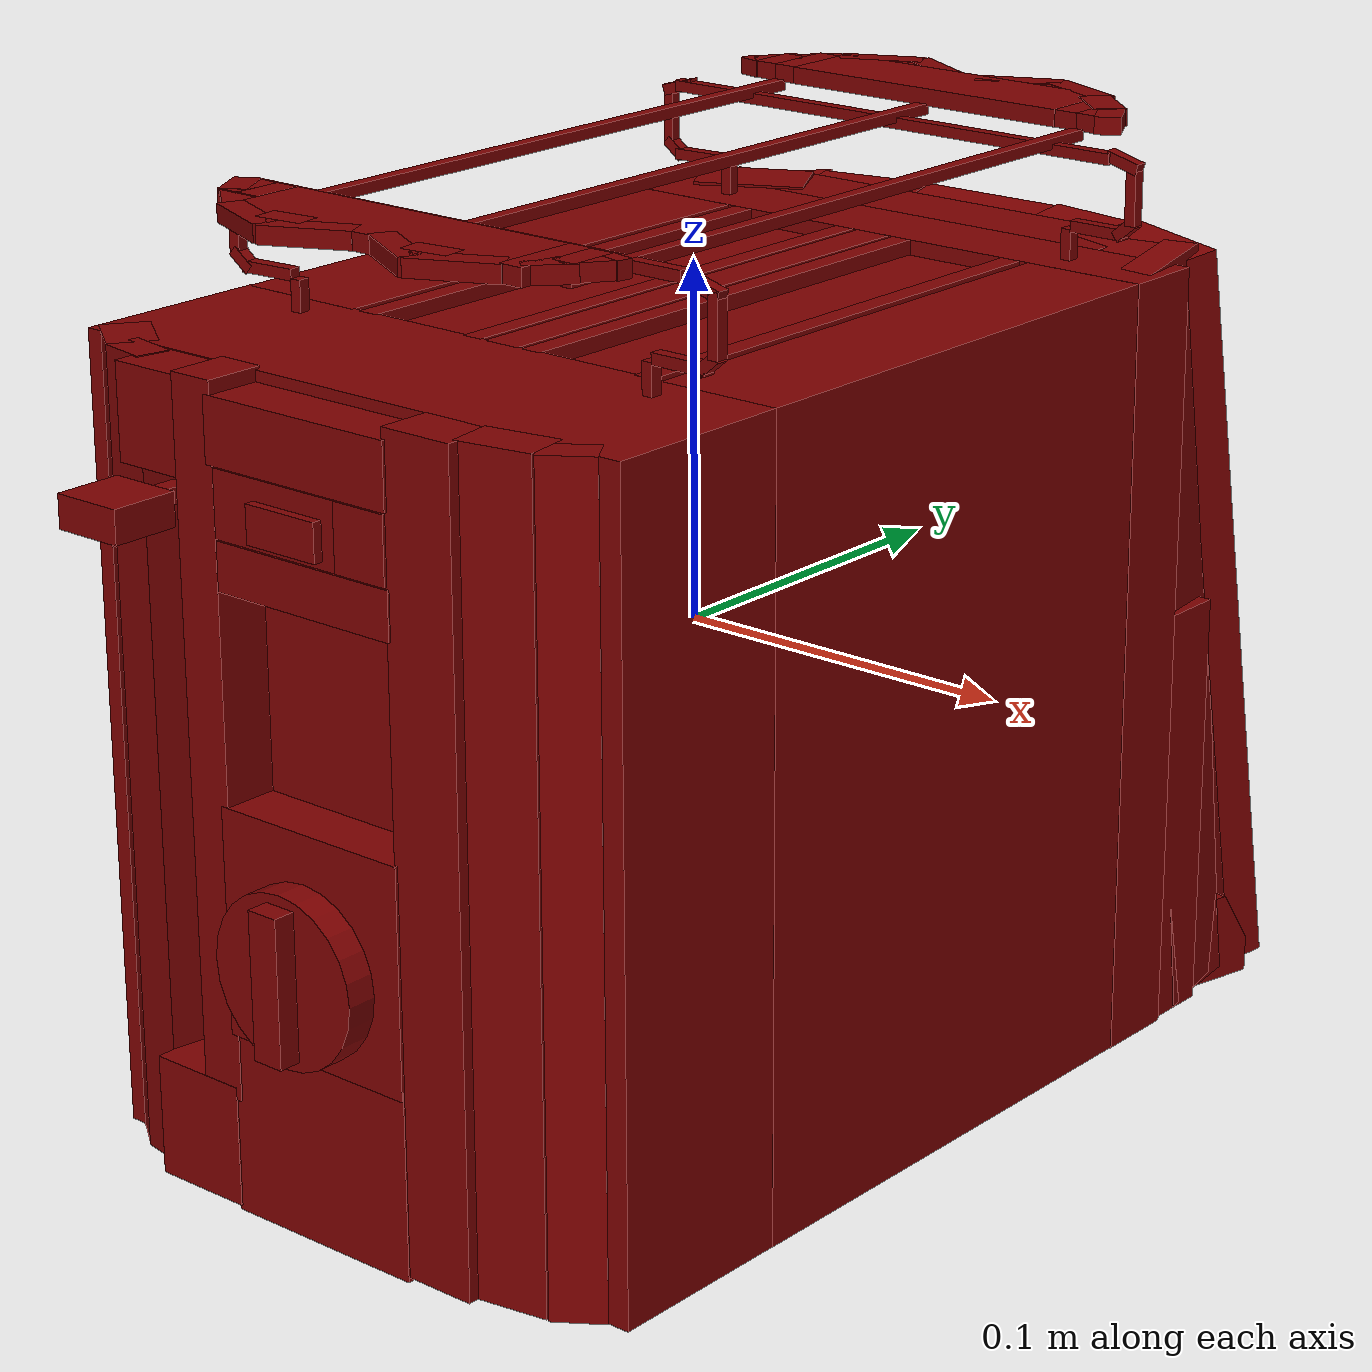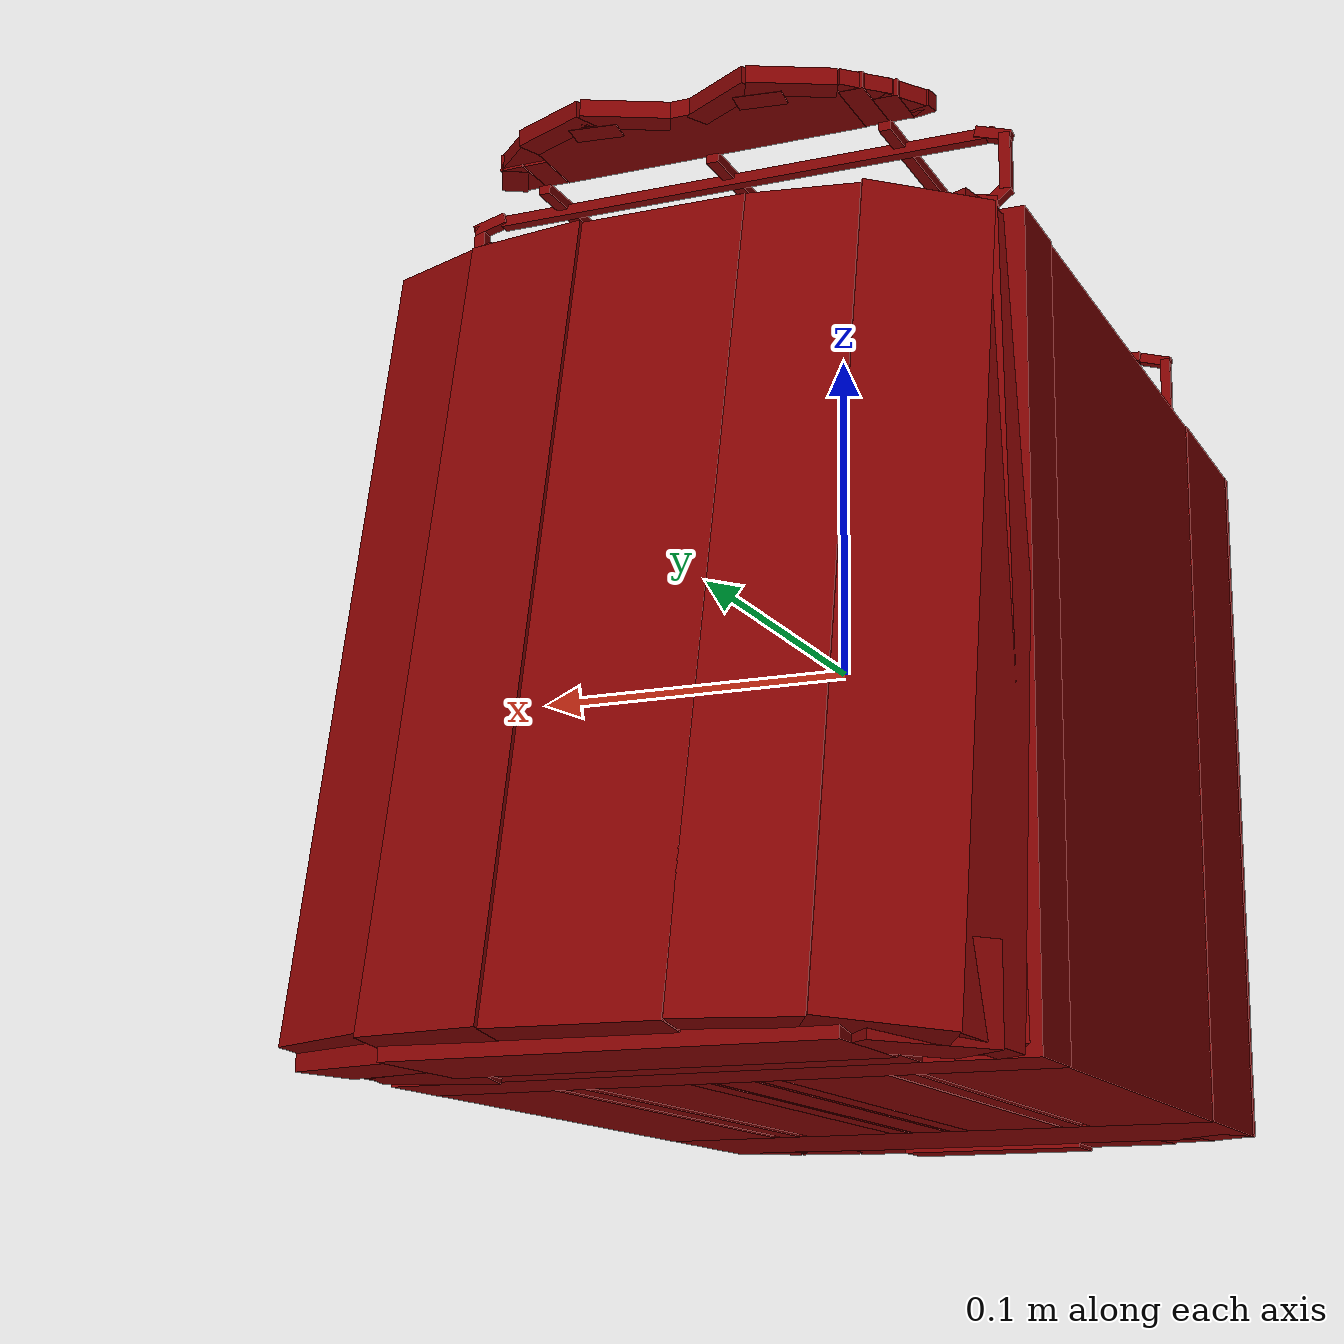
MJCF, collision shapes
<?xml version='1.0' encoding='UTF-8'?>
<mujoco model="model">
  <compiler angle="radian"/>
  <asset>
    <mesh file="visuals/Body001.obj" name="Body001_vis"/>
    <mesh file="visuals/Body002.obj" name="Body002_vis"/>
    <mesh file="visuals/Button001.obj" name="Button001_vis"/>
    <mesh file="visuals/Knob001.obj" name="Knob001_vis"/>
    <mesh file="visuals/Lever001.obj" name="Lever001_vis"/>
    <texture file="visuals/T_BC001.png" name="Body001_material" type="2d"/>
    <material name="Body001_material" rgba="1 1 1 1.0" texture="Body001_material" shininess="0.141421377658844" specular="0.7"/>
    <texture file="visuals/T_BC001.png" name="Body002_material" type="2d"/>
    <material name="Body002_material" rgba="1 1 1 1.0" texture="Body002_material" shininess="0.141421377658844" specular="0.3103448502657381"/>
    <texture file="visuals/T_BC001.png" name="Button001_material" type="2d"/>
    <material name="Button001_material" rgba="1 1 1 1.0" texture="Button001_material" shininess="0.141421377658844" specular="0.3103448502657381"/>
    <texture file="visuals/T_BC001.png" name="Knob001_material" type="2d"/>
    <material name="Knob001_material" rgba="1 1 1 1.0" texture="Knob001_material" shininess="0.141421377658844" specular="0.3103448502657381"/>
    <texture file="visuals/T_BC001.png" name="Lever001_material" type="2d"/>
    <material name="Lever001_material" rgba="1 1 1 1.0" texture="Lever001_material" shininess="0.141421377658844" specular="0.3103448502657381"/>
  </asset>
  <default>
    <default class="visual">
      <geom conaffinity="0" contype="0" group="1" type="mesh"/>
    </default>
    <default class="collision">
      <geom group="0" rgba="0.5 0 0 0.5"/>
    </default>
    <default class="spawn">
      <geom group="0" rgba="1 1 1 0.5" contype="0" conaffinity="0"/>
      <site group="0" rgba="1 1 1 0.5"/>
    </default>
    <default class="region">
      <geom group="1" conaffinity="0" contype="0" rgba="0 1 0 0"/>
    </default>
  </default>
  <worldbody>
    <body>
      <body name="object">
        <geom mesh="Body001_vis" type="mesh" solimp="0.998 0.998 0.001" solref="0.001 1" density="100" friction="0.95 0.3 0.1" class="visual" material="Body001_material"/>
        <geom class="collision" type="box" pos="0.071819 -0.000128 -0.018121" size="0.017897849902510643 0.07558272033929825 0.11121884733438492" quat="1.0 0.0 0.0 0.0"/>
        <geom class="collision" type="box" pos="0.000888 -0.111558 0.128056" size="0.045503027737140656 0.012207301333546638 0.002414036775007844" quat="1.0 0.0 0.0 0.0"/>
        <geom class="collision" type="box" pos="0.000063 0.087372 -0.018121" size="0.08984652906656265 0.011873370967805386 0.11121884733438492" quat="1.0 0.0 0.0 0.0"/>
        <geom class="collision" type="box" pos="-0.070155 -0.000128 -0.018121" size="0.019018039107322693 0.07558272033929825 0.11121884733438492" quat="1.0 0.0 0.0 0.0"/>
        <geom class="collision" type="box" pos="0.000157 -0.000128 -0.113915" size="0.041732896119356155 0.07558272033929825 0.015424847602844238" quat="1.0 0.0 0.0 0.0"/>
        <geom class="collision" type="box" pos="0.039572 -0.138604 -0.018121" size="0.010807800106704235 0.007547955960035324 0.11121699213981628" quat="1.0 0.0 0.0 0.0"/>
        <geom class="collision" type="box" pos="-0.045072 -0.138406 -0.112407" size="0.014666675589978695 0.008579140529036522 0.016932453960180283" quat="1.0 0.0 0.0 0.0"/>
        <geom class="collision" type="box" pos="-0.000579 -0.138385 0.081130" size="0.03038119524717331 0.008556865155696869 0.008924510329961777" quat="1.0 0.0 0.0 0.0"/>
        <geom class="collision" type="box" pos="-0.000579 -0.138842 -0.104235" size="0.030382825061678886 0.007743623107671738 0.026408197358250618" quat="1.0 0.0 0.0 0.0"/>
        <geom class="collision" type="box" pos="0.001135 -0.000128 -0.018121" size="0.005468219053000212 0.07558751851320267 0.11122364550828934" quat="1.0 0.0 0.0 0.0"/>
        <geom class="collision" type="box" pos="0.000030 -0.103089 -0.018121" size="0.08960377424955368 0.028282539919018745 0.11121305078268051" quat="1.0 0.0 0.0 0.0"/>
        <geom class="collision" type="box" pos="0.000952 -0.005598 0.124478" size="0.0017291133990511298 0.10349177569150925 0.0015544283669441938" quat="1.0 0.0 0.0 0.0"/>
        <geom class="collision" type="box" pos="-0.050385 -0.005598 0.124478" size="0.0017291144467890263 0.10349177569150925 0.0015544283669441938" quat="1.0 0.0 0.0 0.0"/>
        <geom class="collision" type="box" pos="0.053547 -0.005598 0.124478" size="0.0017291196854785085 0.10349177569150925 0.0015544283669441938" quat="1.0 0.0 0.0 0.0"/>
        <geom class="collision" type="box" pos="-0.002158 0.084997 0.122745" size="0.07560911029577255 0.001729295589029789 0.0015544859925284982" quat="1.0 0.0 0.0 0.0"/>
        <geom class="collision" type="box" pos="0.080345 0.085665 0.113849" size="0.001554414862766862 0.0017291834810748696 0.008288615383207798" quat="1.0 0.0 0.0 0.0"/>
        <geom class="collision" type="box" pos="0.069592 0.085730 0.102701" size="0.008288619108498096 0.0017291851108893752 0.0015544130001217127" quat="1.0 0.0 0.0 0.0"/>
        <geom class="collision" type="box" pos="0.059937 0.085745 0.097397" size="0.0015544689958915114 0.0017292702104896307 0.004351865034550428" quat="1.0 0.0 0.0 0.0"/>
        <geom class="collision" type="box" pos="0.077156 0.085665 0.122270" size="0.001729181269183755 0.005066163372248411 0.0015544126508757472" quat="0.09229595214128494 0.7010574340820312 -0.7010573148727417 -0.09229602664709091"/>
        <geom class="collision" type="box" pos="0.078372 0.085730 0.104131" size="0.001729181269183755 0.0035548803862184286 0.001554418238811195" quat="0.6644629240036011 0.24184469878673553 -0.2418447732925415 -0.6644631624221802"/>
        <geom class="collision" type="box" pos="0.078372 -0.086262 0.104131" size="0.001729181269183755 0.0035548803862184286 0.0015544155612587929" quat="0.6644629240036011 0.24184469878673553 -0.2418447732925415 -0.6644631624221802"/>
        <geom class="collision" type="box" pos="0.077156 -0.086327 0.122270" size="0.001729181269183755 0.005066165700554848 0.0015544126508757472" quat="0.09229595214128494 0.7010574340820312 -0.7010573148727417 -0.09229602664709091"/>
        <geom class="collision" type="box" pos="0.059937 -0.086247 0.097397" size="0.0015544637572020292 0.0017292611300945282 0.004351865034550428" quat="1.0 0.0 0.0 0.0"/>
        <geom class="collision" type="box" pos="0.069592 -0.086262 0.102701" size="0.008288617245852947 0.0017291851108893752 0.0015544239431619644" quat="1.0 0.0 0.0 0.0"/>
        <geom class="collision" type="box" pos="0.080345 -0.086327 0.113849" size="0.001554414862766862 0.0017291834810748696 0.008288615383207798" quat="1.0 0.0 0.0 0.0"/>
        <geom class="collision" type="box" pos="-0.080425 -0.087136 0.113849" size="0.001729181269183755 0.00828862190246582 0.001554418122395873" quat="0.47771456837654114 0.4777144491672516 0.5213338136672974 0.521333634853363"/>
        <geom class="collision" type="box" pos="-0.069707 -0.086263 0.102701" size="0.001729181269183755 0.00828862190246582 0.0015544126508757472" quat="0.6755902767181396 1.6573051198065514e-07 6.911207606208336e-08 0.7372772693634033"/>
        <geom class="collision" type="box" pos="-0.060088 -0.085437 0.097397" size="0.001729181269183755 0.004351858515292406 0.001554418122395873" quat="0.4777144491672516 -0.4777143895626068 -0.5213338732719421 0.5213337540626526"/>
        <geom class="collision" type="box" pos="-0.077247 -0.086858 0.122270" size="0.001729181269183755 0.005066166631877422 0.0015544126508757472" quat="0.08818227052688599 0.6698103547096252 0.7309699058532715 0.0962340235710144"/>
        <geom class="collision" type="box" pos="-0.078453 -0.087029 0.104131" size="0.001729181269183755 0.0035548803862184286 0.0015544176567345858" quat="0.6348472237586975 0.23106549680233002 0.25216373801231384 0.6928139925003052"/>
        <geom class="collision" type="box" pos="-0.000255 -0.087321 0.124478" size="0.07181192189455032 0.0017291909316554666 0.0015544130001217127" quat="1.0 0.0 0.0 0.0"/>
        <geom class="collision" type="box" pos="-0.080425 0.084863 0.113849" size="0.001729181269183755 0.00828862190246582 0.001554418122395873" quat="0.47771456837654114 0.4777144491672516 0.5213338136672974 0.521333634853363"/>
        <geom class="collision" type="box" pos="-0.069707 0.085735 0.102701" size="0.001729181269183755 0.008288617245852947 0.0015544126508757472" quat="0.6755902767181396 1.6573051198065514e-07 6.911207606208336e-08 0.7372772693634033"/>
        <geom class="collision" type="box" pos="-0.060088 0.086561 0.097397" size="0.001729181269183755 0.004351858515292406 0.001554418122395873" quat="0.4777144491672516 -0.4777143895626068 -0.5213338732719421 0.5213337540626526"/>
        <geom class="collision" type="box" pos="-0.077247 0.085141 0.122270" size="0.001729181269183755 0.005066162906587124 0.0015544126508757472" quat="0.08818227052688599 0.6698103547096252 0.7309699058532715 0.0962340235710144"/>
        <geom class="collision" type="box" pos="-0.078453 0.084970 0.104131" size="0.001729181269183755 0.0035548803862184286 0.0015544156776741147" quat="0.6348472237586975 0.23106549680233002 0.25216373801231384 0.6928139925003052"/>
        <geom class="collision" type="box" pos="-0.035258 -0.138379 -0.002503" size="0.006606541108340025 0.00855177640914917 0.09632734954357147" quat="1.0 0.0 0.0 0.0"/>
        <geom class="collision" type="box" pos="-0.051286 -0.138254 0.079705" size="0.011028056032955647 0.008426363579928875 0.013121865689754486" quat="1.0 0.0 0.0 0.0"/>
        <geom class="collision" type="box" pos="-0.000579 -0.138281 0.046575" size="0.030382825061678886 0.008454016409814358 0.00663308659568429" quat="1.0 0.0 0.0 0.0"/>
        <geom class="collision" type="box" pos="0.020912 -0.138417 0.062767" size="0.008266915567219257 0.008590007200837135 0.009143780916929245" quat="1.0 0.0 0.0 0.0"/>
        <geom class="collision" type="box" pos="-0.009237 -0.138352 0.062767" size="0.0234342273324728 0.00852483045309782 0.009143763221800327" quat="1.0 0.0 0.0 0.0"/>
        <geom class="collision" type="box" pos="-0.000579 -0.138871 -0.048779" size="0.030382569879293442 0.008155247196555138 0.03149619698524475" quat="1.0 0.0 0.0 0.0"/>
        <geom class="collision" type="box" pos="0.049690 -0.111448 0.128056" size="0.0035432500299066305 0.012207640334963799 0.0024140961468219757" quat="1.0 0.0 0.0 0.0"/>
        <geom class="collision" type="box" pos="0.056652 -0.106462 0.128056" size="0.003543225349858403 0.006820063106715679 0.002414117567241192" quat="1.0 0.0 0.0 0.0"/>
        <geom class="collision" type="box" pos="0.053887 -0.114904 0.128056" size="0.003543225349858403 0.006820063106715679 0.0024140961468219757" quat="0.9250949621200562 0.0 -0.0 -0.37973588705062866"/>
        <geom class="collision" type="box" pos="0.062920 -0.102049 0.128056" size="0.003543225349858403 0.0020794805604964495 0.0024140961468219757" quat="0.9948719143867493 0.0 -0.0 -0.1011427640914917"/>
        <geom class="collision" type="box" pos="0.058954 -0.107549 0.128056" size="0.0035432251170277596 0.006820063106715679 0.0024140961468219757" quat="0.9510329365730286 0.0 -0.0 -0.3090895712375641"/>
        <geom class="collision" type="box" pos="0.035046 -0.126275 0.128056" size="0.003543225349858403 0.012207720428705215 0.0024140961468219757" quat="0.8435781598091125 0.0 -0.0 -0.5370064377784729"/>
        <geom class="collision" type="box" pos="0.015430 -0.125815 0.128056" size="0.003543225349858403 0.012207720428705215 0.0024140961468219757" quat="0.5103968977928162 0.0 -0.0 -0.8599389791488647"/>
        <geom class="collision" type="box" pos="0.025247 -0.124035 0.128056" size="0.0035432251170277596 0.006820063106715679 0.0024140961468219757" quat="0.7473390698432922 0.0 -0.0 -0.6644428968429565"/>
        <geom class="collision" type="box" pos="-0.013949 -0.125815 0.128056" size="0.003543225349858403 0.012207720428705215 0.0024140961468219757" quat="0.8435781598091125 0.0 -0.0 -0.5370064377784729"/>
        <geom class="collision" type="box" pos="-0.034653 -0.125930 0.128056" size="0.003543225349858403 0.012207720428705215 0.0024140961468219757" quat="0.5552929043769836 0.0 -0.0 -0.8316548466682434"/>
        <geom class="collision" type="box" pos="-0.023748 -0.123574 0.128056" size="0.0035432251170277596 0.006820063106715679 0.0024140961468219757" quat="0.7473390698432922 0.0 -0.0 -0.6644428968429565"/>
        <geom class="collision" type="box" pos="-0.048300 -0.106353 0.128056" size="0.003543225349858403 0.006820063106715679 0.0024141164030879736" quat="1.0 0.0 0.0 0.0"/>
        <geom class="collision" type="box" pos="-0.049520 -0.114955 0.128056" size="0.004441085737198591 0.008548281155526638 0.0021612581331282854" quat="0.9103667736053467 0.0 0.0 0.41380226612091064"/>
        <geom class="collision" type="box" pos="-0.058501 -0.105849 0.128056" size="0.006284430157393217 0.00368826393969357 0.0024433673825114965" quat="0.8612894415855408 0.0 -0.0 -0.5081146359443665"/>
        <geom class="collision" type="box" pos="-0.055484 -0.106374 0.128056" size="0.003543225349858403 0.0068200621753931046 0.0024140961468219757" quat="0.9997301697731018 0.0 -0.0 -0.02322978712618351"/>
        <geom class="collision" type="box" pos="0.000596 0.108979 0.127938" size="0.04550359770655632 0.01220759842544794 0.0024140768218785524" quat="1.0 0.0 0.0 0.0"/>
        <geom class="collision" type="box" pos="-0.048128 0.107411 0.127938" size="0.003543228842318058 0.010384543798863888 0.0024140961468219757" quat="1.0 0.0 0.0 0.0"/>
        <geom class="collision" type="box" pos="-0.055167 0.103883 0.127938" size="0.0035432276781648397 0.006820064038038254 0.002414113376289606" quat="1.0 0.0 0.0 0.0"/>
        <geom class="collision" type="box" pos="-0.049409 0.113630 0.127938" size="0.003916915971785784 0.007539349142462015 0.0022580712102353573" quat="0.40163373947143555 0.0 0.0 0.9158003926277161"/>
        <geom class="collision" type="box" pos="-0.061435 0.099470 0.127938" size="0.003543225349858403 0.0020794805604964495 0.0024140961468219757" quat="0.10114292800426483 0.0 0.0 0.9948719143867493"/>
        <geom class="collision" type="box" pos="-0.057470 0.104971 0.127938" size="0.0035432251170277596 0.006820063106715679 0.0024140961468219757" quat="0.3090897500514984 0.0 0.0 0.9510328769683838"/>
        <geom class="collision" type="box" pos="-0.033562 0.123696 0.127938" size="0.003543225349858403 0.012207720428705215 0.0024140961468219757" quat="0.5370064973831177 0.0 0.0 0.8435781002044678"/>
        <geom class="collision" type="box" pos="-0.013945 0.123236 0.127938" size="0.0035432251170277596 0.012207720428705215 0.0024140961468219757" quat="0.8599390387535095 0.0 0.0 0.5103967785835266"/>
        <geom class="collision" type="box" pos="-0.023763 0.121456 0.127789" size="0.0035432251170277596 0.006820063106715679 0.0024140961468219757" quat="0.6644429564476013 0.0 0.0 0.7473390102386475"/>
        <geom class="collision" type="box" pos="0.015434 0.123236 0.127938" size="0.003543225349858403 0.012207720428705215 0.0024140961468219757" quat="0.5370064973831177 0.0 0.0 0.8435781002044678"/>
        <geom class="collision" type="box" pos="0.036137 0.123351 0.127938" size="0.003543225349858403 0.012207720428705215 0.0024140961468219757" quat="0.8316548466682434 0.0 0.0 0.5552929043769836"/>
        <geom class="collision" type="box" pos="0.025233 0.120995 0.127789" size="0.0035432251170277596 0.006820063106715679 0.0024140961468219757" quat="0.6644429564476013 0.0 0.0 0.7473390102386475"/>
        <geom class="collision" type="box" pos="0.049785 0.103774 0.127938" size="0.0035432276781648397 0.006820064038038254 0.002414112212136388" quat="1.0 0.0 0.0 0.0"/>
        <geom class="collision" type="box" pos="0.051004 0.112376 0.128408" size="0.004441085737198591 0.008548281155526638 0.0021612581331282854" quat="0.41380226612091064 0.0 -0.0 -0.9103667736053467"/>
        <geom class="collision" type="box" pos="0.059986 0.103270 0.127938" size="0.006284430157393217 0.00368826393969357 0.0024433673825114965" quat="0.5081146359443665 0.0 0.0 0.8612894415855408"/>
        <geom class="collision" type="box" pos="0.056969 0.103796 0.127938" size="0.003543225349858403 0.006820063106715679 0.0024140961468219757" quat="0.023229969665408134 0.0 0.0 0.9997301697731018"/>
        <geom class="collision" type="box" pos="0.058581 -0.134957 -0.018121" size="0.01080799289047718 0.006625041831284761 0.11121884733438492" quat="0.9966905117034912 0.0 0.0 0.08128968626260757"/>
        <geom class="collision" type="box" pos="0.074716 -0.131973 -0.018121" size="0.00738156121224165 0.004729794804006815 0.11121884733438492" quat="0.956101655960083 0.0 0.0 0.2930351197719574"/>
        <geom class="collision" type="box" pos="-0.078315 -0.127887 -0.018121" size="0.009443521499633789 0.006625041831284761 0.11121884733438492" quat="0.952153205871582 0.0 -0.0 -0.30562111735343933"/>
        <geom class="collision" type="box" pos="-0.066296 -0.135669 -0.018121" size="0.007381560280919075 0.004729794804006815 0.11121884733438492" quat="0.9958137273788452 0.0 -0.0 -0.09140605479478836"/>
        <geom class="collision" type="box" pos="0.000550 0.109830 -0.018121" size="0.059643153101205826 0.011873292736709118 0.11121822893619537" quat="1.0 0.0 0.0 0.0"/>
        <geom class="collision" type="box" pos="0.000892 0.144894 -0.016704" size="0.023797927424311638 0.005012699868530035 0.11121886223554611" quat="0.9965649247169495 0.08246416598558426 -0.005023703910410404 -0.005724199116230011"/>
        <geom class="collision" type="box" pos="-0.038772 0.143604 -0.016823" size="0.017651716247200966 0.004196143709123135 0.11121886968612671" quat="0.9943920969963074 0.08288129419088364 -0.004864959977567196 0.06550908088684082"/>
        <geom class="collision" type="box" pos="-0.067504 0.132924 -0.018581" size="0.017651716247200966 0.00588522432371974 0.11121886223554611" quat="0.9567350745201111 0.07987119257450104 -0.02266186662018299 0.2788638472557068"/>
        <geom class="collision" type="box" pos="-0.080556 0.112851 -0.018800" size="0.01464123371988535 0.0040429821237921715 0.11121886968612671" quat="0.8164798021316528 0.053202804177999496 -0.032888736575841904 0.5739760994911194"/>
        <geom class="collision" type="box" pos="0.041695 0.142667 -0.016482" size="0.017651716247200966 0.00588522432371974 0.11121886968612671" quat="0.9946147203445435 0.08319374173879623 -0.00017087708692997694 -0.061809103935956955"/>
        <geom class="collision" type="box" pos="0.070251 0.133918 -0.015541" size="0.017651716247200966 0.005885224789381027 0.11121886968612671" quat="0.9847123026847839 0.08285678178071976 0.0074824681505560875 -0.1530374139547348"/>
        <geom class="collision" type="box" pos="0.081588 0.109676 -0.016168" size="0.01453572977334261 0.00509297801181674 0.11121886968612671" quat="0.7479175329208374 0.04382636025547981 0.03129924088716507 -0.6616033315658569"/>
        <geom class="collision" type="box" pos="0.066116 0.109394 -0.018024" size="0.014535728842020035 0.017348647117614746 0.11121886968612671" quat="0.718610942363739 0.05031517520546913 0.024392085149884224 -0.6931606531143188"/>
        <geom class="collision" type="box" pos="-0.068364 0.107191 -0.016942" size="0.01622443087399006 0.009179049171507359 0.11121886968612671" quat="0.9683212637901306 0.017481839284300804 0.00994997937232256 0.24889615178108215"/>
        <geom class="collision" type="box" pos="-0.000679 0.138377 -0.117588" size="0.059643544256687164 0.018674883991479874 0.012905346229672432" quat="1.0 0.0 0.0 0.0"/>
        <geom class="collision" type="box" pos="0.067990 0.141628 -0.117588" size="0.010031410492956638 0.018674764782190323 0.012905276380479336" quat="0.6182823181152344 0.0 -0.0 -0.785956084728241"/>
        <geom class="collision" type="box" pos="-0.068768 0.132754 -0.117588" size="0.010031410492956638 0.018674764782190323 0.012905276380479336" quat="0.9473262429237366 0.0 -0.0 -0.3202701807022095"/>
        <geom class="collision" type="box" pos="0.071548 0.107967 -0.067560" size="0.01774711161851883 0.010160927660763264 0.06114324927330017" quat="1.0 0.0 0.0 0.0"/>
        <body name="Body002">
          <geom mesh="Body002_vis" type="mesh" solimp="0.998 0.998 0.001" solref="0.001 1" density="100" friction="0.95 0.3 0.1" class="visual" material="Body002_material"/>
          <geom class="collision" type="box" pos="-0.045642 -0.000128 -0.018121" size="0.0029905959963798523 0.07558871805667877 0.11122484505176544" quat="1.0 0.0 0.0 0.0"/>
          <geom class="collision" type="box" pos="0.048161 -0.000128 -0.018121" size="0.0029905959963798523 0.07558850944042206 0.11122463643550873" quat="1.0 0.0 0.0 0.0"/>
          <geom class="collision" type="box" pos="-0.008872 -0.000128 -0.018121" size="0.0029905959963798523 0.07558796554803848 0.11122409999370575" quat="1.0 0.0 0.0 0.0"/>
          <geom class="collision" type="box" pos="0.011076 -0.000128 -0.018121" size="0.0029905959963798523 0.07558794319629669 0.11122407764196396" quat="1.0 0.0 0.0 0.0"/>
        </body>
        <body name="Button001">
          <joint axis="0.0 0.9999999403953552 0.0" pos="-0.001536 -0.158594 0.061499" limited="true" name="Button001_joint" range="0.0 0.003" type="slide" damping="1" frictionloss="1" armature=".01" stiffness="0.05"/>
          <geom mesh="Button001_vis" type="mesh" solimp="0.998 0.998 0.001" solref="0.001 1" density="100" friction="0.95 0.3 0.1" class="visual" material="Button001_material"/>
          <geom class="collision" type="box" pos="-0.001361 -0.149868 0.061782" size="0.01158258505165577 0.0013246641028672457 0.005231217015534639" quat="1.0 0.0 0.0 0.0"/>
        </body>
        <body name="Knob001">
          <joint axis="0.0 0.9999999403953552 0.0" pos="0.000165 -0.159622 -0.053204" limited="true" name="Knob001_joint" range="0.0 5.759586531581287" type="hinge" damping="0.05" armature="0.001"/>
          <geom mesh="Knob001_vis" type="mesh" solimp="0.998 0.998 0.001" solref="0.001 1" density="100" friction="0.95 0.3 0.1" class="visual" material="Knob001_material"/>
          <geom class="collision" type="cylinder" pos="-0.000357 -0.153158 -0.053124" size="0.02352958545088768 0.004277204629033804" quat="0.7071068286895752 0.7071067690849304 0.0 0.0"/>
          <geom class="collision" type="box" pos="0.000002 -0.159891 -0.052954" size="0.004684708081185818 0.0038145422004163265 0.02036171965301037" quat="1.0 0.0 0.0 0.0"/>
        </body>
        <body name="Lever001">
          <joint axis="0.0 0.0 -1.0" pos="-0.050061 -0.153447 0.059548" limited="true" name="Lever001_joint" range="0.0 0.15" type="slide" damping="1" frictionloss="1" armature=".01" stiffness="1" springref="-1"/>
          <geom mesh="Lever001_vis" type="mesh" solimp="0.998 0.998 0.001" solref="0.001 1" density="100" friction="0.95 0.3 0.1" class="visual" material="Lever001_material"/>
          <geom class="collision" type="box" pos="-0.027229 -0.000128 0.087615" size="0.014000000432133675 0.07249999791383743 0.0021634597796946764" quat="1.0 0.0 0.0 0.0" name="slotL_floor"/>
          <geom class="collision" type="box" pos="0.030215 -0.000128 0.087615" size="0.0139999995008111 0.07249999791383743 0.0021634597796946764" quat="1.0 0.0 0.0 0.0" name="slotR_floor"/>
          <geom class="collision" type="box" pos="-0.049869 -0.159451 0.059730" size="0.010252031497657299 0.009677259251475334 0.004635241813957691" quat="1.0 0.0 0.0 0.0" name="lever_knob"/>
          <geom class="collision" type="box" pos="-0.050200 -0.143653 0.059730" size="0.002658987184986472 0.005694423336535692 0.0022419183515012264" quat="1.0 0.0 0.0 0.0"/>
        </body>
        <geom class="region" name="reg_main" type="box" pos="0.0 0.011066500000000007 0.0004590000000000011" size="0.09 0.1581245 0.13018400000000002"/>
      </body>
    </body>
  </worldbody>
  <actuator>
    <motor name="Button001_joint_actuator" joint="Button001_joint" gear="0.5"/>
    <motor name="Knob001_joint_actuator" joint="Knob001_joint" gear="5"/>
    <motor name="Lever001_joint_actuator" joint="Lever001_joint" gear="5"/>
  </actuator>
</mujoco>
